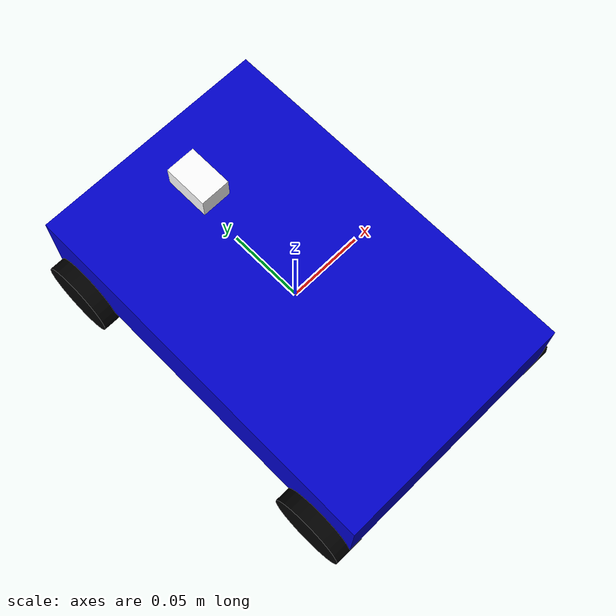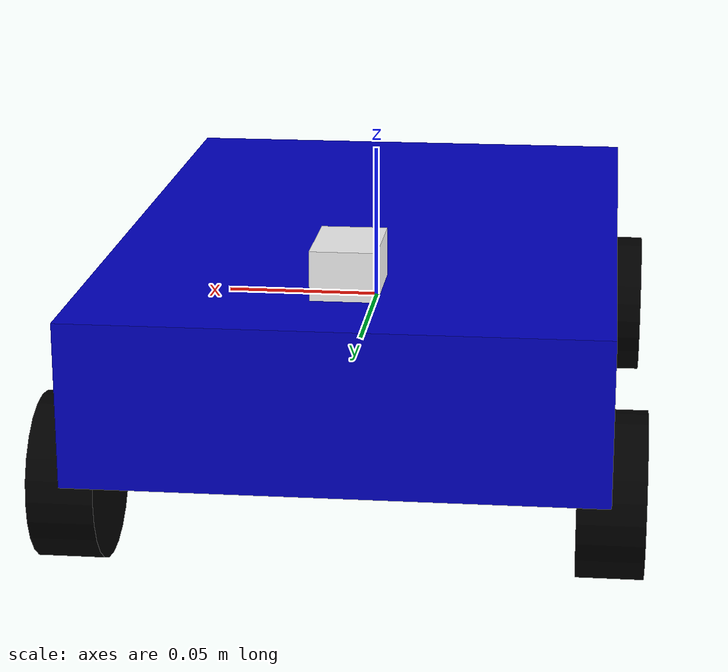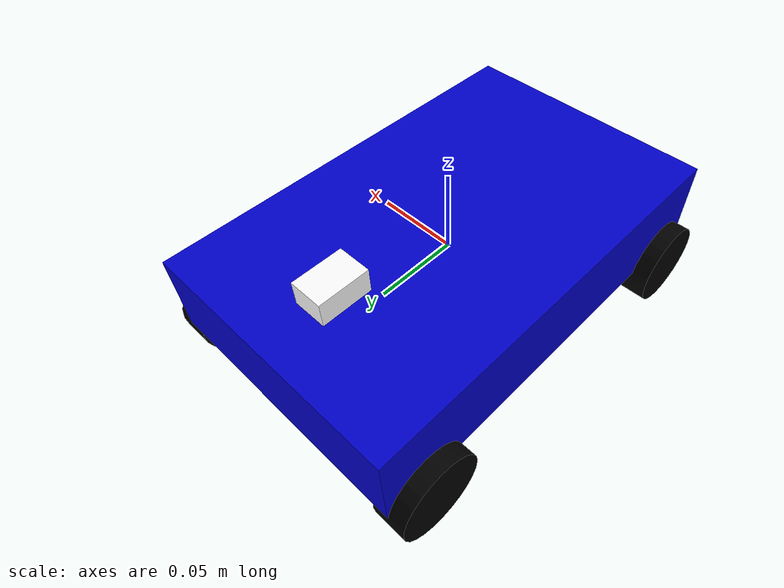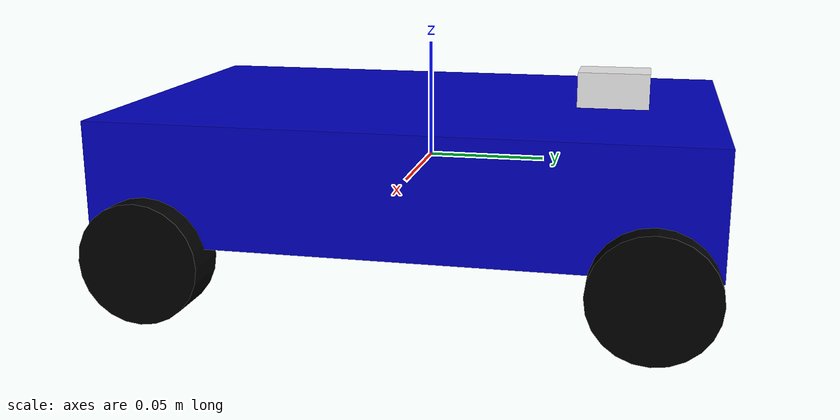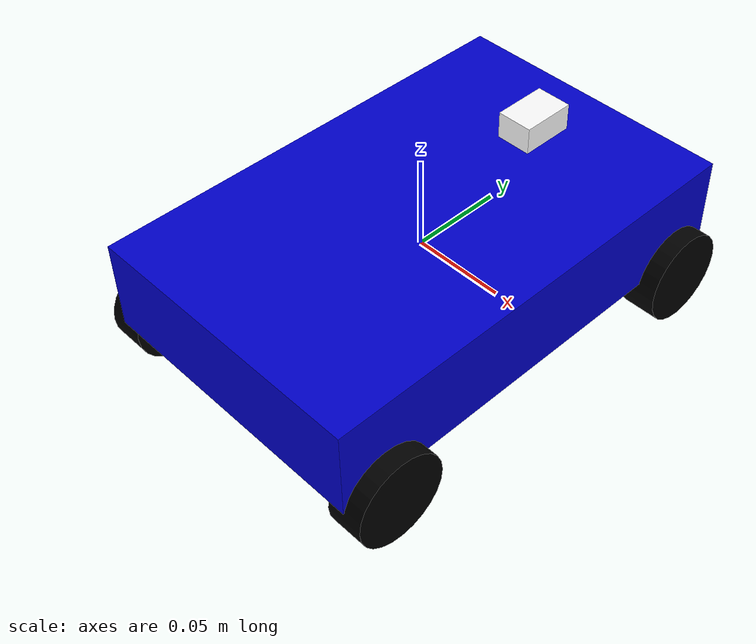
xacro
<?xml version="1.0"?>
<!--
	base
	laser:hokuyo
	IMU
-->
<!-- 直接写urdf模型，laser01.urdf由各个模块组合成机器人模型 -->
<robot name="smartcar" xmlns:xacro="http://www.ros.org/wiki/xacro" >

	<xacro:property name="width" value="0.2" />
  <xacro:property name="leglen" value="0.6" />
  <xacro:property name="polelen" value="0.2" />
  <xacro:property name="bodylen" value="0.6" />
  <xacro:property name="baselen" value="0.4" />
  <xacro:property name="wheeldiam" value="0.04" />
  <xacro:property name="pi" value="3.1415" />

 <xacro:macro name="default_inertial" params="mass">
    <inertial>
      <mass value="${mass}" />
      <inertia ixx="1.0" ixy="0.0" ixz="0.0" iyy="1.0" iyz="0.0" izz="1.0" />
    </inertial>
 </xacro:macro>

<link name="base_link">
    <visual>
      <geometry>
        <box size=".25 0.16 .05"/>
    </geometry>
    <origin rpy="0 0 1.57075" xyz="0 0 0"/>
    <material name="blue">
        <color rgba="0 0 .8 1"/>
    </material>
    </visual>
    <collision>
      <geometry>
      <box size=".25 0.16 .05"/>
      </geometry>
    </collision>
    <xacro:default_inertial mass="10"/>
 </link>

 <link name="right_front_wheel">
    <visual>
      <geometry>
        <cylinder length=".02" radius="0.025"/>
      </geometry>
      <material name="black">
        <color rgba="0 0 0 1"/>
      </material>
    </visual>
    <collision>
      <origin xyz="0 0 0" rpy="0 0 0" />
      <geometry>
      <cylinder length=".02" radius="0.025"/>
      </geometry>
    </collision>
    <xacro:default_inertial mass="1"/>
  </link>

  <joint name="right_front_wheel_joint" type="continuous">
    <axis xyz="0 0 1"/>
    <parent link="base_link"/>
    <child link="right_front_wheel"/>
    <origin rpy="0 1.57075 0" xyz="0.08 0.1 -0.03"/>
    <limit effort="100" velocity="100"/>
    <joint_properties damping="0.0" friction="0.0"/>
  </joint>

  <link name="right_back_wheel">
    <visual>
      <geometry>
        <cylinder length=".02" radius="0.025"/>
      </geometry>
      <material name="black">
        <color rgba="0 0 0 1"/>
      </material>
    </visual>
    <collision>
      <origin xyz="0 0 0" rpy="0 0 0" />
      <geometry>
      <cylinder length=".02" radius="0.025"/>
      </geometry>
    </collision>
    <xacro:default_inertial mass="1"/>
  </link>

  <joint name="right_back_wheel_joint" type="continuous">
    <axis xyz="0 0 1"/>
    <parent link="base_link"/>
    <child link="right_back_wheel"/>
    <origin rpy="0 1.57075 0" xyz="0.08 -0.1 -0.03"/>
    <limit effort="100" velocity="100"/>
    <joint_properties damping="0.0" friction="0.0"/>
 </joint>

 <link name="left_front_wheel">
    <visual>
      <geometry>
        <cylinder length=".02" radius="0.025"/>
      </geometry>
      <material name="black">
        <color rgba="0 0 0 1"/>
      </material>
    </visual>
    <collision>
      <origin xyz="0 0 0" rpy="0 0 0" />
      <geometry>
      <cylinder length=".02" radius="0.025"/>
      </geometry>
    </collision>
    <xacro:default_inertial mass="1"/>
  </link>

  <joint name="left_front_wheel_joint" type="continuous">
    <axis xyz="0 0 1"/>
    <parent link="base_link"/>
    <child link="left_front_wheel"/>
    <origin rpy="0 1.57075 0" xyz="-0.08 0.1 -0.03"/>
    <limit effort="100" velocity="100"/>
    <joint_properties damping="0.0" friction="0.0"/>
  </joint>

  <link name="left_back_wheel">
    <visual>
      <geometry>
        <cylinder length=".02" radius="0.025"/>
      </geometry>
      <material name="black">
        <color rgba="0 0 0 1"/>
      </material>
    </visual>
    <collision>
      <origin xyz="0 0 0" rpy="0 0 0" />
      <geometry>
      <cylinder length=".02" radius="0.025"/>
      </geometry>
    </collision>
    <xacro:default_inertial mass="1"/>
  </link>

  <joint name="left_back_wheel_joint" type="continuous">
    <axis xyz="0 0 1"/>
    <parent link="base_link"/>
    <child link="left_back_wheel"/>
    <origin rpy="0 1.57075 0" xyz="-0.08 -0.1 -0.03"/>
    <limit effort="100" velocity="100"/>
    <joint_properties damping="0.0" friction="0.0"/>
  </joint>

  <link name="hokuyo_link">
    <visual>
      <geometry>
        <box size=".02 .03 .03"/>
      </geometry>
      <material name="white">
          <color rgba="1 1 1 1"/>
      </material>
    </visual>
    <collision>
      <origin xyz="0 0 0" rpy="${pi/2} 0 0" />
      <geometry>
      <box size=".02 .03 .03"/>
      </geometry>
    </collision>
    <xacro:default_inertial mass="1"/>
  </link>

  <joint name="tobox" type="fixed">
    <parent link="base_link"/>
    <child link="hokuyo_link"/>
    <origin xyz="0 0.08 0.025"/>
  </joint>

<gazebo reference="hokuyo_link">
        <sensor type="ray" name="head_hokuyo_sensor">
          <pose>0 0 0 0 0 0</pose>
          <visualize>false</visualize>
          <update_rate>40</update_rate>
          <ray>
            <scan>
              <horizontal>
                <samples>720</samples>
                <resolution>1</resolution>

                <min_angle>-1.570796</min_angle>

                <max_angle>1.570796</max_angle>

              </horizontal>

            </scan>

            <range>

              <min>0.10</min>

              <max>30.0</max>

              <resolution>0.01</resolution>

            </range>

            <noise>

              <type>gaussian</type>

              <mean>0.0</mean>

              <stddev>0.01</stddev>

            </noise>

          </ray>

          <plugin name="gazebo_ros_head_hokuyo_controller" filename="libgazebo_ros_laser.so">

            <topicName>/scan</topicName>

            <frameName>hokuyo_link</frameName>

          </plugin>

        </sensor>

</gazebo>

<!--xacro:include filename="$(find mygazebo)/urdf/laser_hokuyo.xacro"/-->

  <gazebo reference="base_link">
    <gravity>true</gravity>
    <sensor name="imu_sensor" type="imu">
      <always_on>true</always_on>
      <update_rate>100</update_rate>
      <visualize>true</visualize>
      <topic>__default_topic__</topic>
      <plugin filename="libgazebo_ros_imu_sensor.so" name="imu_plugin">
        <topicName>imu</topicName>
        <bodyName>base_link</bodyName>
        <updateRateHZ>10.0</updateRateHZ>
        <gaussianNoise>0.0</gaussianNoise>
        <xyzOffset>0 0 0</xyzOffset>
        <rpyOffset>0 0 0</rpyOffset>
        <frameName>base_link</frameName>
      </plugin>
      <pose>0 0 0 0 0 0</pose>
    </sensor>
  </gazebo>

  <gazebo>
        <plugin name="differential_drive_controller" filename="libgazebo_ros_diff_drive.so">
            <alwaysOn>true</alwaysOn>
            <updateRate>50.0</updateRate>
            <leftJoint>left_front_wheel_joint</leftJoint>
            <rightJoint>right_front_wheel_joint</rightJoint>
            <wheelSeparation>1.0</wheelSeparation>
            <wheelDiameter>0.5</wheelDiameter>
            <torque>1.0</torque>
            <commandTopic>cmd_vel</commandTopic>
            <odometryTopic>odom</odometryTopic>
            <odometryFrame>odom</odometryFrame>
            <robotBaseFrame>base_link</robotBaseFrame>
            <publishWheelTF>true</publishWheelTF>
            <publishWheelJointState>true</publishWheelJointState>
            <legecyMode>false</legecyMode>
            <wheelAcceleration>1</wheelAcceleration>
        </plugin>
    </gazebo>

<transmission name="left_front_trans">
  <type>transmission_interface/SimpleTransmission</type>
  <joint name="left_front_wheel_joint">
    <hardwareInterface>EffortJointInterface</hardwareInterface>
  </joint>
  <actuator name="left_front_wheel_joint_motor">
    <mechanicalReduction>50</mechanicalReduction>
    <hardwareInterface>EffortJointInterface</hardwareInterface>
  </actuator>
</transmission>

<transmission name="right_front_trans">
  <type>transmission_interface/SimpleTransmission</type>
  <joint name="right_front_wheel_joint">
    <hardwareInterface>EffortJointInterface</hardwareInterface>
  </joint>
  <actuator name="right_front_wheel_joint_motor">
    <mechanicalReduction>50</mechanicalReduction>
    <hardwareInterface>EffortJointInterface</hardwareInterface>
  </actuator>
</transmission>

<!-- ros_control plugin -->
<gazebo>
    <plugin name="gazebo_ros_control" filename="libgazebo_ros_control.so">
      <robotNamespace>/robot</robotNamespace>
    </plugin>
  </gazebo>
</robot>
